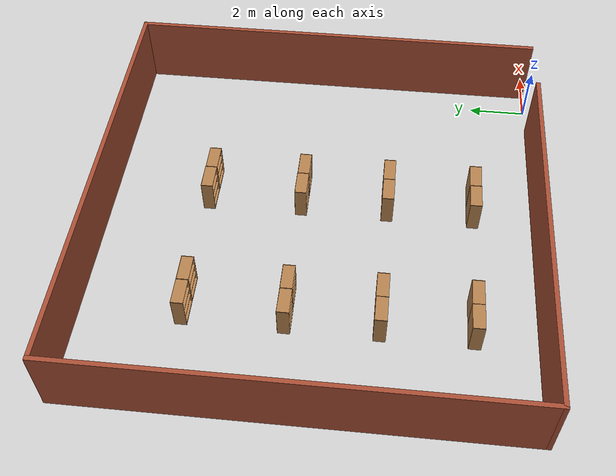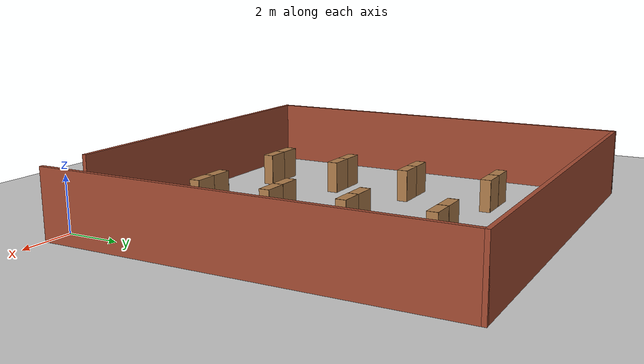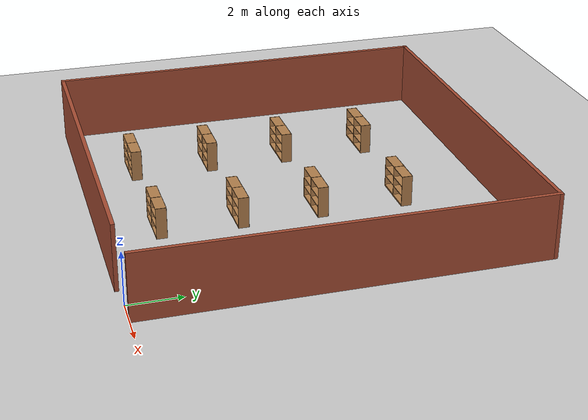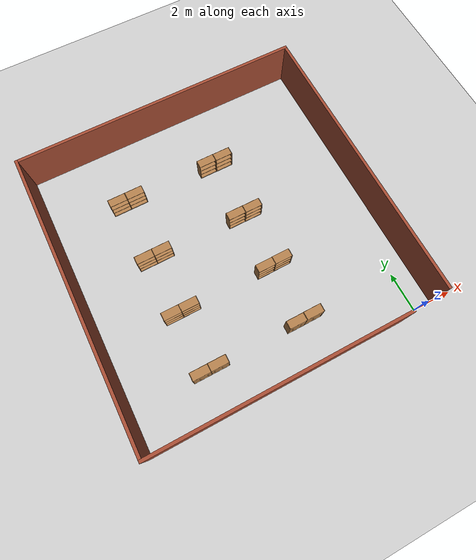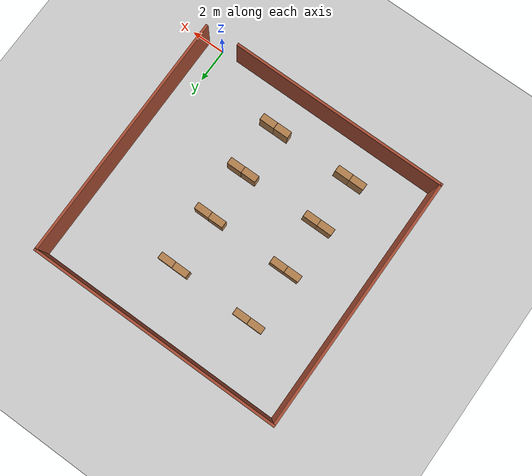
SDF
<sdf version="1.7">
 <world name="default">
  <light name="sun" type="directional">
   <pose>0 0 10 0 -0 0</pose>
   <diffuse>0.8 0.8 0.8 1</diffuse>
   <specular>0.2 0.2 0.2 1</specular>
   <attenuation>
    <range>1000</range>
    <constant>0.9</constant>
    <linear>0.01</linear>
    <quadratic>0.001</quadratic>
   </attenuation>
   <direction>-0.5 0.1 -0.9</direction>
   <spot><inner_angle>0</inner_angle><outer_angle>0</outer_angle><falloff>0</falloff></spot>
  </light>
  <model name="ground_plane">
   <static>1</static>
   <link name="link">
    <collision name="collision">
     <geometry><plane><normal>0 0 1</normal><size>100 100</size></plane></geometry>
     <surface>
      <contact><collide_bitmask>65535</collide_bitmask></contact>
      <friction><ode><mu>100</mu><mu2>50</mu2></ode></friction>
     </surface>
    </collision>
    <visual name="visual">
     <cast_shadows>0</cast_shadows>
     <geometry><plane><normal>0 0 1</normal><size>100 100</size></plane></geometry>
     <material>
      <script><uri>file://media/materials/scripts/gazebo.material</uri><name>Gazebo/Grey</name></script>
     </material>
    </visual>
   </link>
  </model>
  <gravity>0 0 -9.8</gravity>
  <magnetic_field>6e-06 2.3e-05 -4.2e-05</magnetic_field>
  <atmosphere type="adiabatic"/>
  <physics type="ode">
   <max_step_size>0.001</max_step_size>
   <real_time_factor>1</real_time_factor>
   <real_time_update_rate>1000</real_time_update_rate>
  </physics>
  <scene><ambient>0.4 0.4 0.4 1</ambient><background>0.7 0.7 0.7 1</background><shadows>1</shadows></scene>
  <spherical_coordinates>
   <surface_model>EARTH_WGS84</surface_model>
   <latitude_deg>0</latitude_deg>
   <longitude_deg>0</longitude_deg>
   <elevation>0</elevation>
   <heading_deg>0</heading_deg>
  </spherical_coordinates>
  <model name="Walls">
   <pose>-6.45533 7.33207 0 0 -0 0</pose>
   <link name="Wall_0">
    <collision name="Wall_0_Collision">
     <geometry><box><size>14.847 0.15 2.5</size></box></geometry>
     <pose>0 0 1.25 0 -0 0</pose>
    </collision>
    <visual name="Wall_0_Visual">
     <pose>0 0 1.25 0 -0 0</pose>
     <geometry><box><size>14.847 0.15 2.5</size></box></geometry>
     <material>
      <script><uri>file://media/materials/scripts/gazebo.material</uri><name>Gazebo/Bricks</name></script>
      <ambient>1 1 1 1</ambient>
     </material>
     <meta><layer>0</layer></meta>
    </visual>
    <pose>7.425 0.0765 0 0 -0 1.5708</pose>
   </link>
   <link name="Wall_2">
    <collision name="Wall_2_Collision">
     <geometry><box><size>15 0.15 2.5</size></box></geometry>
     <pose>0 0 1.25 0 -0 0</pose>
    </collision>
    <visual name="Wall_2_Visual">
     <pose>0 0 1.25 0 -0 0</pose>
     <geometry><box><size>15 0.15 2.5</size></box></geometry>
     <material>
      <script><uri>file://media/materials/scripts/gazebo.material</uri><name>Gazebo/Bricks</name></script>
      <ambient>1 1 1 1</ambient>
     </material>
     <meta><layer>0</layer></meta>
    </visual>
    <pose>-7.425 0 0 0 -0 1.5708</pose>
   </link>
   <link name="Wall_5">
    <collision name="Wall_5_Collision">
     <geometry><box><size>13 0.15 2.5</size></box></geometry>
     <pose>0 0 1.25 0 -0 0</pose>
    </collision>
    <visual name="Wall_5_Visual">
     <pose>0 0 1.25 0 -0 0</pose>
     <geometry><box><size>13 0.15 2.5</size></box></geometry>
     <material>
      <script><uri>file://media/materials/scripts/gazebo.material</uri><name>Gazebo/Bricks</name></script>
      <ambient>1 1 1 1</ambient>
     </material>
     <meta><layer>0</layer></meta>
    </visual>
    <pose>-1 -7.425 0 0 -0 0</pose>
   </link>
   <link name="Wall_8">
    <collision name="Wall_8_Collision">
     <geometry><box><size>15 0.15 2.5</size></box></geometry>
     <pose>0 0 1.25 0 -0 0</pose>
    </collision>
    <visual name="Wall_8_Visual">
     <pose>0 0 1.25 0 -0 0</pose>
     <geometry><box><size>15 0.15 2.5</size></box></geometry>
     <material>
      <script><uri>file://media/materials/scripts/gazebo.material</uri><name>Gazebo/Bricks</name></script>
      <ambient>1 1 1 1</ambient>
     </material>
     <meta><layer>0</layer></meta>
    </visual>
    <pose>0 7.425 0 0 -0 0</pose>
   </link>
   <static>1</static>
  </model>
  <model name="bookshelf">
   <static>1</static>
   <link name="link">
    <inertial><mass>1</mass></inertial>
    <collision name="back">
     <pose>0 0.005 0.6 0 -0 0</pose>
     <geometry><box><size>0.9 0.01 1.2</size></box></geometry>
    </collision>
    <visual name="visual1">
     <pose>0 0.005 0.6 0 -0 0</pose>
     <geometry><box><size>0.9 0.01 1.2</size></box></geometry>
     <material>
      <script><uri>file://media/materials/scripts/gazebo.material</uri><name>Gazebo/Wood</name></script>
     </material>
    </visual>
    <collision name="left_side">
     <pose>0.45 -0.195 0.6 0 -0 0</pose>
     <geometry><box><size>0.02 0.4 1.2</size></box></geometry>
    </collision>
    <visual name="visual2">
     <pose>0.45 -0.195 0.6 0 -0 0</pose>
     <geometry><box><size>0.02 0.4 1.2</size></box></geometry>
     <material>
      <script><uri>file://media/materials/scripts/gazebo.material</uri><name>Gazebo/Wood</name></script>
     </material>
    </visual>
    <collision name="right_side">
     <pose>-0.45 -0.195 0.6 0 -0 0</pose>
     <geometry><box><size>0.02 0.4 1.2</size></box></geometry>
    </collision>
    <visual name="visual3">
     <pose>-0.45 -0.195 0.6 0 -0 0</pose>
     <geometry><box><size>0.02 0.4 1.2</size></box></geometry>
     <material>
      <script><uri>file://media/materials/scripts/gazebo.material</uri><name>Gazebo/Wood</name></script>
     </material>
    </visual>
    <collision name="bottom">
     <pose>0 -0.195 0.03 0 -0 0</pose>
     <geometry><box><size>0.88 0.4 0.06</size></box></geometry>
    </collision>
    <visual name="visual4">
     <pose>0 -0.195 0.03 0 -0 0</pose>
     <geometry><box><size>0.88 0.4 0.06</size></box></geometry>
     <material>
      <script><uri>file://media/materials/scripts/gazebo.material</uri><name>Gazebo/Wood</name></script>
     </material>
    </visual>
    <collision name="top">
     <pose>0 -0.195 1.19 0 -0 0</pose>
     <geometry><box><size>0.88 0.4 0.02</size></box></geometry>
    </collision>
    <visual name="visual5">
     <pose>0 -0.195 1.19 0 -0 0</pose>
     <geometry><box><size>0.88 0.4 0.02</size></box></geometry>
     <material>
      <script><uri>file://media/materials/scripts/gazebo.material</uri><name>Gazebo/Wood</name></script>
     </material>
    </visual>
    <collision name="low_shelf">
     <pose>0 -0.195 0.43 0 -0 0</pose>
     <geometry><box><size>0.88 0.4 0.02</size></box></geometry>
    </collision>
    <visual name="visual6">
     <pose>0 -0.195 0.43 0 -0 0</pose>
     <geometry><box><size>0.88 0.4 0.02</size></box></geometry>
     <material>
      <script><uri>file://media/materials/scripts/gazebo.material</uri><name>Gazebo/Wood</name></script>
     </material>
    </visual>
    <collision name="high_shelf">
     <pose>0 -0.195 0.8 0 -0 0</pose>
     <geometry><box><size>0.88 0.4 0.02</size></box></geometry>
    </collision>
    <visual name="visual7">
     <pose>0 -0.195 0.8 0 -0 0</pose>
     <geometry><box><size>0.88 0.4 0.02</size></box></geometry>
     <material>
      <script><uri>file://media/materials/scripts/gazebo.material</uri><name>Gazebo/Wood</name></script>
     </material>
    </visual>
   </link>
   <pose>-10.3627 2.18884 0 0 -0 0</pose>
  </model>
  <model name="bookshelf_0">
   <static>1</static>
   <link name="link">
    <inertial><mass>1</mass></inertial>
    <collision name="back">
     <pose>0 0.005 0.6 0 -0 0</pose>
     <geometry><box><size>0.9 0.01 1.2</size></box></geometry>
    </collision>
    <visual name="visual1">
     <pose>0 0.005 0.6 0 -0 0</pose>
     <geometry><box><size>0.9 0.01 1.2</size></box></geometry>
     <material>
      <script><uri>file://media/materials/scripts/gazebo.material</uri><name>Gazebo/Wood</name></script>
     </material>
    </visual>
    <collision name="left_side">
     <pose>0.45 -0.195 0.6 0 -0 0</pose>
     <geometry><box><size>0.02 0.4 1.2</size></box></geometry>
    </collision>
    <visual name="visual2">
     <pose>0.45 -0.195 0.6 0 -0 0</pose>
     <geometry><box><size>0.02 0.4 1.2</size></box></geometry>
     <material>
      <script><uri>file://media/materials/scripts/gazebo.material</uri><name>Gazebo/Wood</name></script>
     </material>
    </visual>
    <collision name="right_side">
     <pose>-0.45 -0.195 0.6 0 -0 0</pose>
     <geometry><box><size>0.02 0.4 1.2</size></box></geometry>
    </collision>
    <visual name="visual3">
     <pose>-0.45 -0.195 0.6 0 -0 0</pose>
     <geometry><box><size>0.02 0.4 1.2</size></box></geometry>
     <material>
      <script><uri>file://media/materials/scripts/gazebo.material</uri><name>Gazebo/Wood</name></script>
     </material>
    </visual>
    <collision name="bottom">
     <pose>0 -0.195 0.03 0 -0 0</pose>
     <geometry><box><size>0.88 0.4 0.06</size></box></geometry>
    </collision>
    <visual name="visual4">
     <pose>0 -0.195 0.03 0 -0 0</pose>
     <geometry><box><size>0.88 0.4 0.06</size></box></geometry>
     <material>
      <script><uri>file://media/materials/scripts/gazebo.material</uri><name>Gazebo/Wood</name></script>
     </material>
    </visual>
    <collision name="top">
     <pose>0 -0.195 1.19 0 -0 0</pose>
     <geometry><box><size>0.88 0.4 0.02</size></box></geometry>
    </collision>
    <visual name="visual5">
     <pose>0 -0.195 1.19 0 -0 0</pose>
     <geometry><box><size>0.88 0.4 0.02</size></box></geometry>
     <material>
      <script><uri>file://media/materials/scripts/gazebo.material</uri><name>Gazebo/Wood</name></script>
     </material>
    </visual>
    <collision name="low_shelf">
     <pose>0 -0.195 0.43 0 -0 0</pose>
     <geometry><box><size>0.88 0.4 0.02</size></box></geometry>
    </collision>
    <visual name="visual6">
     <pose>0 -0.195 0.43 0 -0 0</pose>
     <geometry><box><size>0.88 0.4 0.02</size></box></geometry>
     <material>
      <script><uri>file://media/materials/scripts/gazebo.material</uri><name>Gazebo/Wood</name></script>
     </material>
    </visual>
    <collision name="high_shelf">
     <pose>0 -0.195 0.8 0 -0 0</pose>
     <geometry><box><size>0.88 0.4 0.02</size></box></geometry>
    </collision>
    <visual name="visual7">
     <pose>0 -0.195 0.8 0 -0 0</pose>
     <geometry><box><size>0.88 0.4 0.02</size></box></geometry>
     <material>
      <script><uri>file://media/materials/scripts/gazebo.material</uri><name>Gazebo/Wood</name></script>
     </material>
    </visual>
   </link>
   <pose>-9.46891 2.1904 0 0 -0 0</pose>
  </model>
  <model name="bookshelf_1_clone">
   <static>1</static>
   <link name="link">
    <inertial><mass>1</mass></inertial>
    <collision name="back">
     <pose>0 0.005 0.6 0 -0 0</pose>
     <geometry><box><size>0.9 0.01 1.2</size></box></geometry>
    </collision>
    <visual name="visual1">
     <pose>0 0.005 0.6 0 -0 0</pose>
     <geometry><box><size>0.9 0.01 1.2</size></box></geometry>
     <material>
      <script><uri>file://media/materials/scripts/gazebo.material</uri><name>Gazebo/Wood</name></script>
     </material>
    </visual>
    <collision name="left_side">
     <pose>0.45 -0.195 0.6 0 -0 0</pose>
     <geometry><box><size>0.02 0.4 1.2</size></box></geometry>
    </collision>
    <visual name="visual2">
     <pose>0.45 -0.195 0.6 0 -0 0</pose>
     <geometry><box><size>0.02 0.4 1.2</size></box></geometry>
     <material>
      <script><uri>file://media/materials/scripts/gazebo.material</uri><name>Gazebo/Wood</name></script>
     </material>
    </visual>
    <collision name="right_side">
     <pose>-0.45 -0.195 0.6 0 -0 0</pose>
     <geometry><box><size>0.02 0.4 1.2</size></box></geometry>
    </collision>
    <visual name="visual3">
     <pose>-0.45 -0.195 0.6 0 -0 0</pose>
     <geometry><box><size>0.02 0.4 1.2</size></box></geometry>
     <material>
      <script><uri>file://media/materials/scripts/gazebo.material</uri><name>Gazebo/Wood</name></script>
     </material>
    </visual>
    <collision name="bottom">
     <pose>0 -0.195 0.03 0 -0 0</pose>
     <geometry><box><size>0.88 0.4 0.06</size></box></geometry>
    </collision>
    <visual name="visual4">
     <pose>0 -0.195 0.03 0 -0 0</pose>
     <geometry><box><size>0.88 0.4 0.06</size></box></geometry>
     <material>
      <script><uri>file://media/materials/scripts/gazebo.material</uri><name>Gazebo/Wood</name></script>
     </material>
    </visual>
    <collision name="top">
     <pose>0 -0.195 1.19 0 -0 0</pose>
     <geometry><box><size>0.88 0.4 0.02</size></box></geometry>
    </collision>
    <visual name="visual5">
     <pose>0 -0.195 1.19 0 -0 0</pose>
     <geometry><box><size>0.88 0.4 0.02</size></box></geometry>
     <material>
      <script><uri>file://media/materials/scripts/gazebo.material</uri><name>Gazebo/Wood</name></script>
     </material>
    </visual>
    <collision name="low_shelf">
     <pose>0 -0.195 0.43 0 -0 0</pose>
     <geometry><box><size>0.88 0.4 0.02</size></box></geometry>
    </collision>
    <visual name="visual6">
     <pose>0 -0.195 0.43 0 -0 0</pose>
     <geometry><box><size>0.88 0.4 0.02</size></box></geometry>
     <material>
      <script><uri>file://media/materials/scripts/gazebo.material</uri><name>Gazebo/Wood</name></script>
     </material>
    </visual>
    <collision name="high_shelf">
     <pose>0 -0.195 0.8 0 -0 0</pose>
     <geometry><box><size>0.88 0.4 0.02</size></box></geometry>
    </collision>
    <visual name="visual7">
     <pose>0 -0.195 0.8 0 -0 0</pose>
     <geometry><box><size>0.88 0.4 0.02</size></box></geometry>
     <material>
      <script><uri>file://media/materials/scripts/gazebo.material</uri><name>Gazebo/Wood</name></script>
     </material>
    </visual>
   </link>
   <pose>-9.48296 5.17271 0 0 -0 0</pose>
  </model>
  <model name="bookshelf_2">
   <static>1</static>
   <link name="link">
    <inertial><mass>1</mass></inertial>
    <collision name="back">
     <pose>0 0.005 0.6 0 -0 0</pose>
     <geometry><box><size>0.9 0.01 1.2</size></box></geometry>
    </collision>
    <visual name="visual1">
     <pose>0 0.005 0.6 0 -0 0</pose>
     <geometry><box><size>0.9 0.01 1.2</size></box></geometry>
     <material>
      <script><uri>file://media/materials/scripts/gazebo.material</uri><name>Gazebo/Wood</name></script>
     </material>
    </visual>
    <collision name="left_side">
     <pose>0.45 -0.195 0.6 0 -0 0</pose>
     <geometry><box><size>0.02 0.4 1.2</size></box></geometry>
    </collision>
    <visual name="visual2">
     <pose>0.45 -0.195 0.6 0 -0 0</pose>
     <geometry><box><size>0.02 0.4 1.2</size></box></geometry>
     <material>
      <script><uri>file://media/materials/scripts/gazebo.material</uri><name>Gazebo/Wood</name></script>
     </material>
    </visual>
    <collision name="right_side">
     <pose>-0.45 -0.195 0.6 0 -0 0</pose>
     <geometry><box><size>0.02 0.4 1.2</size></box></geometry>
    </collision>
    <visual name="visual3">
     <pose>-0.45 -0.195 0.6 0 -0 0</pose>
     <geometry><box><size>0.02 0.4 1.2</size></box></geometry>
     <material>
      <script><uri>file://media/materials/scripts/gazebo.material</uri><name>Gazebo/Wood</name></script>
     </material>
    </visual>
    <collision name="bottom">
     <pose>0 -0.195 0.03 0 -0 0</pose>
     <geometry><box><size>0.88 0.4 0.06</size></box></geometry>
    </collision>
    <visual name="visual4">
     <pose>0 -0.195 0.03 0 -0 0</pose>
     <geometry><box><size>0.88 0.4 0.06</size></box></geometry>
     <material>
      <script><uri>file://media/materials/scripts/gazebo.material</uri><name>Gazebo/Wood</name></script>
     </material>
    </visual>
    <collision name="top">
     <pose>0 -0.195 1.19 0 -0 0</pose>
     <geometry><box><size>0.88 0.4 0.02</size></box></geometry>
    </collision>
    <visual name="visual5">
     <pose>0 -0.195 1.19 0 -0 0</pose>
     <geometry><box><size>0.88 0.4 0.02</size></box></geometry>
     <material>
      <script><uri>file://media/materials/scripts/gazebo.material</uri><name>Gazebo/Wood</name></script>
     </material>
    </visual>
    <collision name="low_shelf">
     <pose>0 -0.195 0.43 0 -0 0</pose>
     <geometry><box><size>0.88 0.4 0.02</size></box></geometry>
    </collision>
    <visual name="visual6">
     <pose>0 -0.195 0.43 0 -0 0</pose>
     <geometry><box><size>0.88 0.4 0.02</size></box></geometry>
     <material>
      <script><uri>file://media/materials/scripts/gazebo.material</uri><name>Gazebo/Wood</name></script>
     </material>
    </visual>
    <collision name="high_shelf">
     <pose>0 -0.195 0.8 0 -0 0</pose>
     <geometry><box><size>0.88 0.4 0.02</size></box></geometry>
    </collision>
    <visual name="visual7">
     <pose>0 -0.195 0.8 0 -0 0</pose>
     <geometry><box><size>0.88 0.4 0.02</size></box></geometry>
     <material>
      <script><uri>file://media/materials/scripts/gazebo.material</uri><name>Gazebo/Wood</name></script>
     </material>
    </visual>
   </link>
   <pose>-10.3798 8.1937 0 0 -0 0</pose>
  </model>
  <model name="bookshelf_2_clone">
   <static>1</static>
   <link name="link">
    <inertial><mass>1</mass></inertial>
    <collision name="back">
     <pose>0 0.005 0.6 0 -0 0</pose>
     <geometry><box><size>0.9 0.01 1.2</size></box></geometry>
    </collision>
    <visual name="visual1">
     <pose>0 0.005 0.6 0 -0 0</pose>
     <geometry><box><size>0.9 0.01 1.2</size></box></geometry>
     <material>
      <script><uri>file://media/materials/scripts/gazebo.material</uri><name>Gazebo/Wood</name></script>
     </material>
    </visual>
    <collision name="left_side">
     <pose>0.45 -0.195 0.6 0 -0 0</pose>
     <geometry><box><size>0.02 0.4 1.2</size></box></geometry>
    </collision>
    <visual name="visual2">
     <pose>0.45 -0.195 0.6 0 -0 0</pose>
     <geometry><box><size>0.02 0.4 1.2</size></box></geometry>
     <material>
      <script><uri>file://media/materials/scripts/gazebo.material</uri><name>Gazebo/Wood</name></script>
     </material>
    </visual>
    <collision name="right_side">
     <pose>-0.45 -0.195 0.6 0 -0 0</pose>
     <geometry><box><size>0.02 0.4 1.2</size></box></geometry>
    </collision>
    <visual name="visual3">
     <pose>-0.45 -0.195 0.6 0 -0 0</pose>
     <geometry><box><size>0.02 0.4 1.2</size></box></geometry>
     <material>
      <script><uri>file://media/materials/scripts/gazebo.material</uri><name>Gazebo/Wood</name></script>
     </material>
    </visual>
    <collision name="bottom">
     <pose>0 -0.195 0.03 0 -0 0</pose>
     <geometry><box><size>0.88 0.4 0.06</size></box></geometry>
    </collision>
    <visual name="visual4">
     <pose>0 -0.195 0.03 0 -0 0</pose>
     <geometry><box><size>0.88 0.4 0.06</size></box></geometry>
     <material>
      <script><uri>file://media/materials/scripts/gazebo.material</uri><name>Gazebo/Wood</name></script>
     </material>
    </visual>
    <collision name="top">
     <pose>0 -0.195 1.19 0 -0 0</pose>
     <geometry><box><size>0.88 0.4 0.02</size></box></geometry>
    </collision>
    <visual name="visual5">
     <pose>0 -0.195 1.19 0 -0 0</pose>
     <geometry><box><size>0.88 0.4 0.02</size></box></geometry>
     <material>
      <script><uri>file://media/materials/scripts/gazebo.material</uri><name>Gazebo/Wood</name></script>
     </material>
    </visual>
    <collision name="low_shelf">
     <pose>0 -0.195 0.43 0 -0 0</pose>
     <geometry><box><size>0.88 0.4 0.02</size></box></geometry>
    </collision>
    <visual name="visual6">
     <pose>0 -0.195 0.43 0 -0 0</pose>
     <geometry><box><size>0.88 0.4 0.02</size></box></geometry>
     <material>
      <script><uri>file://media/materials/scripts/gazebo.material</uri><name>Gazebo/Wood</name></script>
     </material>
    </visual>
    <collision name="high_shelf">
     <pose>0 -0.195 0.8 0 -0 0</pose>
     <geometry><box><size>0.88 0.4 0.02</size></box></geometry>
    </collision>
    <visual name="visual7">
     <pose>0 -0.195 0.8 0 -0 0</pose>
     <geometry><box><size>0.88 0.4 0.02</size></box></geometry>
     <material>
      <script><uri>file://media/materials/scripts/gazebo.material</uri><name>Gazebo/Wood</name></script>
     </material>
    </visual>
   </link>
   <pose>-9.47282 8.19691 0 0 -0 0</pose>
  </model>
  <model name="bookshelf_1_clone_clone">
   <static>1</static>
   <link name="link">
    <inertial><mass>1</mass></inertial>
    <collision name="back">
     <pose>0 0.005 0.6 0 -0 0</pose>
     <geometry><box><size>0.9 0.01 1.2</size></box></geometry>
    </collision>
    <visual name="visual1">
     <pose>0 0.005 0.6 0 -0 0</pose>
     <geometry><box><size>0.9 0.01 1.2</size></box></geometry>
     <material>
      <script><uri>file://media/materials/scripts/gazebo.material</uri><name>Gazebo/Wood</name></script>
     </material>
    </visual>
    <collision name="left_side">
     <pose>0.45 -0.195 0.6 0 -0 0</pose>
     <geometry><box><size>0.02 0.4 1.2</size></box></geometry>
    </collision>
    <visual name="visual2">
     <pose>0.45 -0.195 0.6 0 -0 0</pose>
     <geometry><box><size>0.02 0.4 1.2</size></box></geometry>
     <material>
      <script><uri>file://media/materials/scripts/gazebo.material</uri><name>Gazebo/Wood</name></script>
     </material>
    </visual>
    <collision name="right_side">
     <pose>-0.45 -0.195 0.6 0 -0 0</pose>
     <geometry><box><size>0.02 0.4 1.2</size></box></geometry>
    </collision>
    <visual name="visual3">
     <pose>-0.45 -0.195 0.6 0 -0 0</pose>
     <geometry><box><size>0.02 0.4 1.2</size></box></geometry>
     <material>
      <script><uri>file://media/materials/scripts/gazebo.material</uri><name>Gazebo/Wood</name></script>
     </material>
    </visual>
    <collision name="bottom">
     <pose>0 -0.195 0.03 0 -0 0</pose>
     <geometry><box><size>0.88 0.4 0.06</size></box></geometry>
    </collision>
    <visual name="visual4">
     <pose>0 -0.195 0.03 0 -0 0</pose>
     <geometry><box><size>0.88 0.4 0.06</size></box></geometry>
     <material>
      <script><uri>file://media/materials/scripts/gazebo.material</uri><name>Gazebo/Wood</name></script>
     </material>
    </visual>
    <collision name="top">
     <pose>0 -0.195 1.19 0 -0 0</pose>
     <geometry><box><size>0.88 0.4 0.02</size></box></geometry>
    </collision>
    <visual name="visual5">
     <pose>0 -0.195 1.19 0 -0 0</pose>
     <geometry><box><size>0.88 0.4 0.02</size></box></geometry>
     <material>
      <script><uri>file://media/materials/scripts/gazebo.material</uri><name>Gazebo/Wood</name></script>
     </material>
    </visual>
    <collision name="low_shelf">
     <pose>0 -0.195 0.43 0 -0 0</pose>
     <geometry><box><size>0.88 0.4 0.02</size></box></geometry>
    </collision>
    <visual name="visual6">
     <pose>0 -0.195 0.43 0 -0 0</pose>
     <geometry><box><size>0.88 0.4 0.02</size></box></geometry>
     <material>
      <script><uri>file://media/materials/scripts/gazebo.material</uri><name>Gazebo/Wood</name></script>
     </material>
    </visual>
    <collision name="high_shelf">
     <pose>0 -0.195 0.8 0 -0 0</pose>
     <geometry><box><size>0.88 0.4 0.02</size></box></geometry>
    </collision>
    <visual name="visual7">
     <pose>0 -0.195 0.8 0 -0 0</pose>
     <geometry><box><size>0.88 0.4 0.02</size></box></geometry>
     <material>
      <script><uri>file://media/materials/scripts/gazebo.material</uri><name>Gazebo/Wood</name></script>
     </material>
    </visual>
   </link>
   <pose>-10.3708 5.17206 0 0 -0 0</pose>
  </model>
  <model name="bookshelf_2_clone_clone">
   <static>1</static>
   <link name="link">
    <inertial><mass>1</mass></inertial>
    <collision name="back">
     <pose>0 0.005 0.6 0 -0 0</pose>
     <geometry><box><size>0.9 0.01 1.2</size></box></geometry>
    </collision>
    <visual name="visual1">
     <pose>0 0.005 0.6 0 -0 0</pose>
     <geometry><box><size>0.9 0.01 1.2</size></box></geometry>
     <material>
      <script><uri>file://media/materials/scripts/gazebo.material</uri><name>Gazebo/Wood</name></script>
     </material>
    </visual>
    <collision name="left_side">
     <pose>0.45 -0.195 0.6 0 -0 0</pose>
     <geometry><box><size>0.02 0.4 1.2</size></box></geometry>
    </collision>
    <visual name="visual2">
     <pose>0.45 -0.195 0.6 0 -0 0</pose>
     <geometry><box><size>0.02 0.4 1.2</size></box></geometry>
     <material>
      <script><uri>file://media/materials/scripts/gazebo.material</uri><name>Gazebo/Wood</name></script>
     </material>
    </visual>
    <collision name="right_side">
     <pose>-0.45 -0.195 0.6 0 -0 0</pose>
     <geometry><box><size>0.02 0.4 1.2</size></box></geometry>
    </collision>
    <visual name="visual3">
     <pose>-0.45 -0.195 0.6 0 -0 0</pose>
     <geometry><box><size>0.02 0.4 1.2</size></box></geometry>
     <material>
      <script><uri>file://media/materials/scripts/gazebo.material</uri><name>Gazebo/Wood</name></script>
     </material>
    </visual>
    <collision name="bottom">
     <pose>0 -0.195 0.03 0 -0 0</pose>
     <geometry><box><size>0.88 0.4 0.06</size></box></geometry>
    </collision>
    <visual name="visual4">
     <pose>0 -0.195 0.03 0 -0 0</pose>
     <geometry><box><size>0.88 0.4 0.06</size></box></geometry>
     <material>
      <script><uri>file://media/materials/scripts/gazebo.material</uri><name>Gazebo/Wood</name></script>
     </material>
    </visual>
    <collision name="top">
     <pose>0 -0.195 1.19 0 -0 0</pose>
     <geometry><box><size>0.88 0.4 0.02</size></box></geometry>
    </collision>
    <visual name="visual5">
     <pose>0 -0.195 1.19 0 -0 0</pose>
     <geometry><box><size>0.88 0.4 0.02</size></box></geometry>
     <material>
      <script><uri>file://media/materials/scripts/gazebo.material</uri><name>Gazebo/Wood</name></script>
     </material>
    </visual>
    <collision name="low_shelf">
     <pose>0 -0.195 0.43 0 -0 0</pose>
     <geometry><box><size>0.88 0.4 0.02</size></box></geometry>
    </collision>
    <visual name="visual6">
     <pose>0 -0.195 0.43 0 -0 0</pose>
     <geometry><box><size>0.88 0.4 0.02</size></box></geometry>
     <material>
      <script><uri>file://media/materials/scripts/gazebo.material</uri><name>Gazebo/Wood</name></script>
     </material>
    </visual>
    <collision name="high_shelf">
     <pose>0 -0.195 0.8 0 -0 0</pose>
     <geometry><box><size>0.88 0.4 0.02</size></box></geometry>
    </collision>
    <visual name="visual7">
     <pose>0 -0.195 0.8 0 -0 0</pose>
     <geometry><box><size>0.88 0.4 0.02</size></box></geometry>
     <material>
      <script><uri>file://media/materials/scripts/gazebo.material</uri><name>Gazebo/Wood</name></script>
     </material>
    </visual>
   </link>
   <pose>-9.45575 11.4978 0 0 -0 0</pose>
  </model>
  <model name="bookshelf_2_clone_clone_0">
   <static>1</static>
   <link name="link">
    <inertial><mass>1</mass></inertial>
    <collision name="back">
     <pose>0 0.005 0.6 0 -0 0</pose>
     <geometry><box><size>0.9 0.01 1.2</size></box></geometry>
    </collision>
    <visual name="visual1">
     <pose>0 0.005 0.6 0 -0 0</pose>
     <geometry><box><size>0.9 0.01 1.2</size></box></geometry>
     <material>
      <script><uri>file://media/materials/scripts/gazebo.material</uri><name>Gazebo/Wood</name></script>
     </material>
    </visual>
    <collision name="left_side">
     <pose>0.45 -0.195 0.6 0 -0 0</pose>
     <geometry><box><size>0.02 0.4 1.2</size></box></geometry>
    </collision>
    <visual name="visual2">
     <pose>0.45 -0.195 0.6 0 -0 0</pose>
     <geometry><box><size>0.02 0.4 1.2</size></box></geometry>
     <material>
      <script><uri>file://media/materials/scripts/gazebo.material</uri><name>Gazebo/Wood</name></script>
     </material>
    </visual>
    <collision name="right_side">
     <pose>-0.45 -0.195 0.6 0 -0 0</pose>
     <geometry><box><size>0.02 0.4 1.2</size></box></geometry>
    </collision>
    <visual name="visual3">
     <pose>-0.45 -0.195 0.6 0 -0 0</pose>
     <geometry><box><size>0.02 0.4 1.2</size></box></geometry>
     <material>
      <script><uri>file://media/materials/scripts/gazebo.material</uri><name>Gazebo/Wood</name></script>
     </material>
    </visual>
    <collision name="bottom">
     <pose>0 -0.195 0.03 0 -0 0</pose>
     <geometry><box><size>0.88 0.4 0.06</size></box></geometry>
    </collision>
    <visual name="visual4">
     <pose>0 -0.195 0.03 0 -0 0</pose>
     <geometry><box><size>0.88 0.4 0.06</size></box></geometry>
     <material>
      <script><uri>file://media/materials/scripts/gazebo.material</uri><name>Gazebo/Wood</name></script>
     </material>
    </visual>
    <collision name="top">
     <pose>0 -0.195 1.19 0 -0 0</pose>
     <geometry><box><size>0.88 0.4 0.02</size></box></geometry>
    </collision>
    <visual name="visual5">
     <pose>0 -0.195 1.19 0 -0 0</pose>
     <geometry><box><size>0.88 0.4 0.02</size></box></geometry>
     <material>
      <script><uri>file://media/materials/scripts/gazebo.material</uri><name>Gazebo/Wood</name></script>
     </material>
    </visual>
    <collision name="low_shelf">
     <pose>0 -0.195 0.43 0 -0 0</pose>
     <geometry><box><size>0.88 0.4 0.02</size></box></geometry>
    </collision>
    <visual name="visual6">
     <pose>0 -0.195 0.43 0 -0 0</pose>
     <geometry><box><size>0.88 0.4 0.02</size></box></geometry>
     <material>
      <script><uri>file://media/materials/scripts/gazebo.material</uri><name>Gazebo/Wood</name></script>
     </material>
    </visual>
    <collision name="high_shelf">
     <pose>0 -0.195 0.8 0 -0 0</pose>
     <geometry><box><size>0.88 0.4 0.02</size></box></geometry>
    </collision>
    <visual name="visual7">
     <pose>0 -0.195 0.8 0 -0 0</pose>
     <geometry><box><size>0.88 0.4 0.02</size></box></geometry>
     <material>
      <script><uri>file://media/materials/scripts/gazebo.material</uri><name>Gazebo/Wood</name></script>
     </material>
    </visual>
   </link>
   <pose>-10.3657 11.4987 0 0 -0 0</pose>
  </model>
  <model name="bookshelf_0_clone">
   <static>1</static>
   <link name="link">
    <inertial><mass>1</mass></inertial>
    <collision name="back">
     <pose>0 0.005 0.6 0 -0 0</pose>
     <geometry><box><size>0.9 0.01 1.2</size></box></geometry>
    </collision>
    <visual name="visual1">
     <pose>0 0.005 0.6 0 -0 0</pose>
     <geometry><box><size>0.9 0.01 1.2</size></box></geometry>
     <material>
      <script><uri>file://media/materials/scripts/gazebo.material</uri><name>Gazebo/Wood</name></script>
     </material>
    </visual>
    <collision name="left_side">
     <pose>0.45 -0.195 0.6 0 -0 0</pose>
     <geometry><box><size>0.02 0.4 1.2</size></box></geometry>
    </collision>
    <visual name="visual2">
     <pose>0.45 -0.195 0.6 0 -0 0</pose>
     <geometry><box><size>0.02 0.4 1.2</size></box></geometry>
     <material>
      <script><uri>file://media/materials/scripts/gazebo.material</uri><name>Gazebo/Wood</name></script>
     </material>
    </visual>
    <collision name="right_side">
     <pose>-0.45 -0.195 0.6 0 -0 0</pose>
     <geometry><box><size>0.02 0.4 1.2</size></box></geometry>
    </collision>
    <visual name="visual3">
     <pose>-0.45 -0.195 0.6 0 -0 0</pose>
     <geometry><box><size>0.02 0.4 1.2</size></box></geometry>
     <material>
      <script><uri>file://media/materials/scripts/gazebo.material</uri><name>Gazebo/Wood</name></script>
     </material>
    </visual>
    <collision name="bottom">
     <pose>0 -0.195 0.03 0 -0 0</pose>
     <geometry><box><size>0.88 0.4 0.06</size></box></geometry>
    </collision>
    <visual name="visual4">
     <pose>0 -0.195 0.03 0 -0 0</pose>
     <geometry><box><size>0.88 0.4 0.06</size></box></geometry>
     <material>
      <script><uri>file://media/materials/scripts/gazebo.material</uri><name>Gazebo/Wood</name></script>
     </material>
    </visual>
    <collision name="top">
     <pose>0 -0.195 1.19 0 -0 0</pose>
     <geometry><box><size>0.88 0.4 0.02</size></box></geometry>
    </collision>
    <visual name="visual5">
     <pose>0 -0.195 1.19 0 -0 0</pose>
     <geometry><box><size>0.88 0.4 0.02</size></box></geometry>
     <material>
      <script><uri>file://media/materials/scripts/gazebo.material</uri><name>Gazebo/Wood</name></script>
     </material>
    </visual>
    <collision name="low_shelf">
     <pose>0 -0.195 0.43 0 -0 0</pose>
     <geometry><box><size>0.88 0.4 0.02</size></box></geometry>
    </collision>
    <visual name="visual6">
     <pose>0 -0.195 0.43 0 -0 0</pose>
     <geometry><box><size>0.88 0.4 0.02</size></box></geometry>
     <material>
      <script><uri>file://media/materials/scripts/gazebo.material</uri><name>Gazebo/Wood</name></script>
     </material>
    </visual>
    <collision name="high_shelf">
     <pose>0 -0.195 0.8 0 -0 0</pose>
     <geometry><box><size>0.88 0.4 0.02</size></box></geometry>
    </collision>
    <visual name="visual7">
     <pose>0 -0.195 0.8 0 -0 0</pose>
     <geometry><box><size>0.88 0.4 0.02</size></box></geometry>
     <material>
      <script><uri>file://media/materials/scripts/gazebo.material</uri><name>Gazebo/Wood</name></script>
     </material>
    </visual>
   </link>
   <pose>-5.47266 2.21127 0 0 -0 0</pose>
  </model>
  <model name="bookshelf_0_clone_clone">
   <static>1</static>
   <link name="link">
    <inertial><mass>1</mass></inertial>
    <collision name="back">
     <pose>0 0.005 0.6 0 -0 0</pose>
     <geometry><box><size>0.9 0.01 1.2</size></box></geometry>
    </collision>
    <visual name="visual1">
     <pose>0 0.005 0.6 0 -0 0</pose>
     <geometry><box><size>0.9 0.01 1.2</size></box></geometry>
     <material>
      <script><uri>file://media/materials/scripts/gazebo.material</uri><name>Gazebo/Wood</name></script>
     </material>
    </visual>
    <collision name="left_side">
     <pose>0.45 -0.195 0.6 0 -0 0</pose>
     <geometry><box><size>0.02 0.4 1.2</size></box></geometry>
    </collision>
    <visual name="visual2">
     <pose>0.45 -0.195 0.6 0 -0 0</pose>
     <geometry><box><size>0.02 0.4 1.2</size></box></geometry>
     <material>
      <script><uri>file://media/materials/scripts/gazebo.material</uri><name>Gazebo/Wood</name></script>
     </material>
    </visual>
    <collision name="right_side">
     <pose>-0.45 -0.195 0.6 0 -0 0</pose>
     <geometry><box><size>0.02 0.4 1.2</size></box></geometry>
    </collision>
    <visual name="visual3">
     <pose>-0.45 -0.195 0.6 0 -0 0</pose>
     <geometry><box><size>0.02 0.4 1.2</size></box></geometry>
     <material>
      <script><uri>file://media/materials/scripts/gazebo.material</uri><name>Gazebo/Wood</name></script>
     </material>
    </visual>
    <collision name="bottom">
     <pose>0 -0.195 0.03 0 -0 0</pose>
     <geometry><box><size>0.88 0.4 0.06</size></box></geometry>
    </collision>
    <visual name="visual4">
     <pose>0 -0.195 0.03 0 -0 0</pose>
     <geometry><box><size>0.88 0.4 0.06</size></box></geometry>
     <material>
      <script><uri>file://media/materials/scripts/gazebo.material</uri><name>Gazebo/Wood</name></script>
     </material>
    </visual>
    <collision name="top">
     <pose>0 -0.195 1.19 0 -0 0</pose>
     <geometry><box><size>0.88 0.4 0.02</size></box></geometry>
    </collision>
    <visual name="visual5">
     <pose>0 -0.195 1.19 0 -0 0</pose>
     <geometry><box><size>0.88 0.4 0.02</size></box></geometry>
     <material>
      <script><uri>file://media/materials/scripts/gazebo.material</uri><name>Gazebo/Wood</name></script>
     </material>
    </visual>
    <collision name="low_shelf">
     <pose>0 -0.195 0.43 0 -0 0</pose>
     <geometry><box><size>0.88 0.4 0.02</size></box></geometry>
    </collision>
    <visual name="visual6">
     <pose>0 -0.195 0.43 0 -0 0</pose>
     <geometry><box><size>0.88 0.4 0.02</size></box></geometry>
     <material>
      <script><uri>file://media/materials/scripts/gazebo.material</uri><name>Gazebo/Wood</name></script>
     </material>
    </visual>
    <collision name="high_shelf">
     <pose>0 -0.195 0.8 0 -0 0</pose>
     <geometry><box><size>0.88 0.4 0.02</size></box></geometry>
    </collision>
    <visual name="visual7">
     <pose>0 -0.195 0.8 0 -0 0</pose>
     <geometry><box><size>0.88 0.4 0.02</size></box></geometry>
     <material>
      <script><uri>file://media/materials/scripts/gazebo.material</uri><name>Gazebo/Wood</name></script>
     </material>
    </visual>
   </link>
   <pose>-4.56555 2.21562 0 0 -0 0</pose>
  </model>
  <model name="bookshelf_1_clone_clone_0">
   <static>1</static>
   <link name="link">
    <inertial><mass>1</mass></inertial>
    <collision name="back">
     <pose>0 0.005 0.6 0 -0 0</pose>
     <geometry><box><size>0.9 0.01 1.2</size></box></geometry>
    </collision>
    <visual name="visual1">
     <pose>0 0.005 0.6 0 -0 0</pose>
     <geometry><box><size>0.9 0.01 1.2</size></box></geometry>
     <material>
      <script><uri>file://media/materials/scripts/gazebo.material</uri><name>Gazebo/Wood</name></script>
     </material>
    </visual>
    <collision name="left_side">
     <pose>0.45 -0.195 0.6 0 -0 0</pose>
     <geometry><box><size>0.02 0.4 1.2</size></box></geometry>
    </collision>
    <visual name="visual2">
     <pose>0.45 -0.195 0.6 0 -0 0</pose>
     <geometry><box><size>0.02 0.4 1.2</size></box></geometry>
     <material>
      <script><uri>file://media/materials/scripts/gazebo.material</uri><name>Gazebo/Wood</name></script>
     </material>
    </visual>
    <collision name="right_side">
     <pose>-0.45 -0.195 0.6 0 -0 0</pose>
     <geometry><box><size>0.02 0.4 1.2</size></box></geometry>
    </collision>
    <visual name="visual3">
     <pose>-0.45 -0.195 0.6 0 -0 0</pose>
     <geometry><box><size>0.02 0.4 1.2</size></box></geometry>
     <material>
      <script><uri>file://media/materials/scripts/gazebo.material</uri><name>Gazebo/Wood</name></script>
     </material>
    </visual>
    <collision name="bottom">
     <pose>0 -0.195 0.03 0 -0 0</pose>
     <geometry><box><size>0.88 0.4 0.06</size></box></geometry>
    </collision>
    <visual name="visual4">
     <pose>0 -0.195 0.03 0 -0 0</pose>
     <geometry><box><size>0.88 0.4 0.06</size></box></geometry>
     <material>
      <script><uri>file://media/materials/scripts/gazebo.material</uri><name>Gazebo/Wood</name></script>
     </material>
    </visual>
    <collision name="top">
     <pose>0 -0.195 1.19 0 -0 0</pose>
     <geometry><box><size>0.88 0.4 0.02</size></box></geometry>
    </collision>
    <visual name="visual5">
     <pose>0 -0.195 1.19 0 -0 0</pose>
     <geometry><box><size>0.88 0.4 0.02</size></box></geometry>
     <material>
      <script><uri>file://media/materials/scripts/gazebo.material</uri><name>Gazebo/Wood</name></script>
     </material>
    </visual>
    <collision name="low_shelf">
     <pose>0 -0.195 0.43 0 -0 0</pose>
     <geometry><box><size>0.88 0.4 0.02</size></box></geometry>
    </collision>
    <visual name="visual6">
     <pose>0 -0.195 0.43 0 -0 0</pose>
     <geometry><box><size>0.88 0.4 0.02</size></box></geometry>
     <material>
      <script><uri>file://media/materials/scripts/gazebo.material</uri><name>Gazebo/Wood</name></script>
     </material>
    </visual>
    <collision name="high_shelf">
     <pose>0 -0.195 0.8 0 -0 0</pose>
     <geometry><box><size>0.88 0.4 0.02</size></box></geometry>
    </collision>
    <visual name="visual7">
     <pose>0 -0.195 0.8 0 -0 0</pose>
     <geometry><box><size>0.88 0.4 0.02</size></box></geometry>
     <material>
      <script><uri>file://media/materials/scripts/gazebo.material</uri><name>Gazebo/Wood</name></script>
     </material>
    </visual>
   </link>
   <pose>-5.45849 5.19351 0 0 -0 0</pose>
  </model>
  <model name="bookshelf_1_clone_clone_0_clone">
   <static>1</static>
   <link name="link">
    <inertial><mass>1</mass></inertial>
    <collision name="back">
     <pose>0 0.005 0.6 0 -0 0</pose>
     <geometry><box><size>0.9 0.01 1.2</size></box></geometry>
    </collision>
    <visual name="visual1">
     <pose>0 0.005 0.6 0 -0 0</pose>
     <geometry><box><size>0.9 0.01 1.2</size></box></geometry>
     <material>
      <script><uri>file://media/materials/scripts/gazebo.material</uri><name>Gazebo/Wood</name></script>
     </material>
    </visual>
    <collision name="left_side">
     <pose>0.45 -0.195 0.6 0 -0 0</pose>
     <geometry><box><size>0.02 0.4 1.2</size></box></geometry>
    </collision>
    <visual name="visual2">
     <pose>0.45 -0.195 0.6 0 -0 0</pose>
     <geometry><box><size>0.02 0.4 1.2</size></box></geometry>
     <material>
      <script><uri>file://media/materials/scripts/gazebo.material</uri><name>Gazebo/Wood</name></script>
     </material>
    </visual>
    <collision name="right_side">
     <pose>-0.45 -0.195 0.6 0 -0 0</pose>
     <geometry><box><size>0.02 0.4 1.2</size></box></geometry>
    </collision>
    <visual name="visual3">
     <pose>-0.45 -0.195 0.6 0 -0 0</pose>
     <geometry><box><size>0.02 0.4 1.2</size></box></geometry>
     <material>
      <script><uri>file://media/materials/scripts/gazebo.material</uri><name>Gazebo/Wood</name></script>
     </material>
    </visual>
    <collision name="bottom">
     <pose>0 -0.195 0.03 0 -0 0</pose>
     <geometry><box><size>0.88 0.4 0.06</size></box></geometry>
    </collision>
    <visual name="visual4">
     <pose>0 -0.195 0.03 0 -0 0</pose>
     <geometry><box><size>0.88 0.4 0.06</size></box></geometry>
     <material>
      <script><uri>file://media/materials/scripts/gazebo.material</uri><name>Gazebo/Wood</name></script>
     </material>
    </visual>
    <collision name="top">
     <pose>0 -0.195 1.19 0 -0 0</pose>
     <geometry><box><size>0.88 0.4 0.02</size></box></geometry>
    </collision>
    <visual name="visual5">
     <pose>0 -0.195 1.19 0 -0 0</pose>
     <geometry><box><size>0.88 0.4 0.02</size></box></geometry>
     <material>
      <script><uri>file://media/materials/scripts/gazebo.material</uri><name>Gazebo/Wood</name></script>
     </material>
    </visual>
    <collision name="low_shelf">
     <pose>0 -0.195 0.43 0 -0 0</pose>
     <geometry><box><size>0.88 0.4 0.02</size></box></geometry>
    </collision>
    <visual name="visual6">
     <pose>0 -0.195 0.43 0 -0 0</pose>
     <geometry><box><size>0.88 0.4 0.02</size></box></geometry>
     <material>
      <script><uri>file://media/materials/scripts/gazebo.material</uri><name>Gazebo/Wood</name></script>
     </material>
    </visual>
    <collision name="high_shelf">
     <pose>0 -0.195 0.8 0 -0 0</pose>
     <geometry><box><size>0.88 0.4 0.02</size></box></geometry>
    </collision>
    <visual name="visual7">
     <pose>0 -0.195 0.8 0 -0 0</pose>
     <geometry><box><size>0.88 0.4 0.02</size></box></geometry>
     <material>
      <script><uri>file://media/materials/scripts/gazebo.material</uri><name>Gazebo/Wood</name></script>
     </material>
    </visual>
   </link>
   <pose>-4.55929 5.20222 0 0 -0 0</pose>
  </model>
  <model name="bookshelf_2_clone_clone_1">
   <static>1</static>
   <link name="link">
    <inertial><mass>1</mass></inertial>
    <collision name="back">
     <pose>0 0.005 0.6 0 -0 0</pose>
     <geometry><box><size>0.9 0.01 1.2</size></box></geometry>
    </collision>
    <visual name="visual1">
     <pose>0 0.005 0.6 0 -0 0</pose>
     <geometry><box><size>0.9 0.01 1.2</size></box></geometry>
     <material>
      <script><uri>file://media/materials/scripts/gazebo.material</uri><name>Gazebo/Wood</name></script>
     </material>
    </visual>
    <collision name="left_side">
     <pose>0.45 -0.195 0.6 0 -0 0</pose>
     <geometry><box><size>0.02 0.4 1.2</size></box></geometry>
    </collision>
    <visual name="visual2">
     <pose>0.45 -0.195 0.6 0 -0 0</pose>
     <geometry><box><size>0.02 0.4 1.2</size></box></geometry>
     <material>
      <script><uri>file://media/materials/scripts/gazebo.material</uri><name>Gazebo/Wood</name></script>
     </material>
    </visual>
    <collision name="right_side">
     <pose>-0.45 -0.195 0.6 0 -0 0</pose>
     <geometry><box><size>0.02 0.4 1.2</size></box></geometry>
    </collision>
    <visual name="visual3">
     <pose>-0.45 -0.195 0.6 0 -0 0</pose>
     <geometry><box><size>0.02 0.4 1.2</size></box></geometry>
     <material>
      <script><uri>file://media/materials/scripts/gazebo.material</uri><name>Gazebo/Wood</name></script>
     </material>
    </visual>
    <collision name="bottom">
     <pose>0 -0.195 0.03 0 -0 0</pose>
     <geometry><box><size>0.88 0.4 0.06</size></box></geometry>
    </collision>
    <visual name="visual4">
     <pose>0 -0.195 0.03 0 -0 0</pose>
     <geometry><box><size>0.88 0.4 0.06</size></box></geometry>
     <material>
      <script><uri>file://media/materials/scripts/gazebo.material</uri><name>Gazebo/Wood</name></script>
     </material>
    </visual>
    <collision name="top">
     <pose>0 -0.195 1.19 0 -0 0</pose>
     <geometry><box><size>0.88 0.4 0.02</size></box></geometry>
    </collision>
    <visual name="visual5">
     <pose>0 -0.195 1.19 0 -0 0</pose>
     <geometry><box><size>0.88 0.4 0.02</size></box></geometry>
     <material>
      <script><uri>file://media/materials/scripts/gazebo.material</uri><name>Gazebo/Wood</name></script>
     </material>
    </visual>
    <collision name="low_shelf">
     <pose>0 -0.195 0.43 0 -0 0</pose>
     <geometry><box><size>0.88 0.4 0.02</size></box></geometry>
    </collision>
    <visual name="visual6">
     <pose>0 -0.195 0.43 0 -0 0</pose>
     <geometry><box><size>0.88 0.4 0.02</size></box></geometry>
     <material>
      <script><uri>file://media/materials/scripts/gazebo.material</uri><name>Gazebo/Wood</name></script>
     </material>
    </visual>
    <collision name="high_shelf">
     <pose>0 -0.195 0.8 0 -0 0</pose>
     <geometry><box><size>0.88 0.4 0.02</size></box></geometry>
    </collision>
    <visual name="visual7">
     <pose>0 -0.195 0.8 0 -0 0</pose>
     <geometry><box><size>0.88 0.4 0.02</size></box></geometry>
     <material>
      <script><uri>file://media/materials/scripts/gazebo.material</uri><name>Gazebo/Wood</name></script>
     </material>
    </visual>
   </link>
   <pose>-5.47816 8.19569 0 0 -0 0</pose>
  </model>
  <model name="bookshelf_2_clone_clone_1_clone">
   <static>1</static>
   <link name="link">
    <inertial><mass>1</mass></inertial>
    <collision name="back">
     <pose>0 0.005 0.6 0 -0 0</pose>
     <geometry><box><size>0.9 0.01 1.2</size></box></geometry>
    </collision>
    <visual name="visual1">
     <pose>0 0.005 0.6 0 -0 0</pose>
     <geometry><box><size>0.9 0.01 1.2</size></box></geometry>
     <material>
      <script><uri>file://media/materials/scripts/gazebo.material</uri><name>Gazebo/Wood</name></script>
     </material>
    </visual>
    <collision name="left_side">
     <pose>0.45 -0.195 0.6 0 -0 0</pose>
     <geometry><box><size>0.02 0.4 1.2</size></box></geometry>
    </collision>
    <visual name="visual2">
     <pose>0.45 -0.195 0.6 0 -0 0</pose>
     <geometry><box><size>0.02 0.4 1.2</size></box></geometry>
     <material>
      <script><uri>file://media/materials/scripts/gazebo.material</uri><name>Gazebo/Wood</name></script>
     </material>
    </visual>
    <collision name="right_side">
     <pose>-0.45 -0.195 0.6 0 -0 0</pose>
     <geometry><box><size>0.02 0.4 1.2</size></box></geometry>
    </collision>
    <visual name="visual3">
     <pose>-0.45 -0.195 0.6 0 -0 0</pose>
     <geometry><box><size>0.02 0.4 1.2</size></box></geometry>
     <material>
      <script><uri>file://media/materials/scripts/gazebo.material</uri><name>Gazebo/Wood</name></script>
     </material>
    </visual>
    <collision name="bottom">
     <pose>0 -0.195 0.03 0 -0 0</pose>
     <geometry><box><size>0.88 0.4 0.06</size></box></geometry>
    </collision>
    <visual name="visual4">
     <pose>0 -0.195 0.03 0 -0 0</pose>
     <geometry><box><size>0.88 0.4 0.06</size></box></geometry>
     <material>
      <script><uri>file://media/materials/scripts/gazebo.material</uri><name>Gazebo/Wood</name></script>
     </material>
    </visual>
    <collision name="top">
     <pose>0 -0.195 1.19 0 -0 0</pose>
     <geometry><box><size>0.88 0.4 0.02</size></box></geometry>
    </collision>
    <visual name="visual5">
     <pose>0 -0.195 1.19 0 -0 0</pose>
     <geometry><box><size>0.88 0.4 0.02</size></box></geometry>
     <material>
      <script><uri>file://media/materials/scripts/gazebo.material</uri><name>Gazebo/Wood</name></script>
     </material>
    </visual>
    <collision name="low_shelf">
     <pose>0 -0.195 0.43 0 -0 0</pose>
     <geometry><box><size>0.88 0.4 0.02</size></box></geometry>
    </collision>
    <visual name="visual6">
     <pose>0 -0.195 0.43 0 -0 0</pose>
     <geometry><box><size>0.88 0.4 0.02</size></box></geometry>
     <material>
      <script><uri>file://media/materials/scripts/gazebo.material</uri><name>Gazebo/Wood</name></script>
     </material>
    </visual>
    <collision name="high_shelf">
     <pose>0 -0.195 0.8 0 -0 0</pose>
     <geometry><box><size>0.88 0.4 0.02</size></box></geometry>
    </collision>
    <visual name="visual7">
     <pose>0 -0.195 0.8 0 -0 0</pose>
     <geometry><box><size>0.88 0.4 0.02</size></box></geometry>
     <material>
      <script><uri>file://media/materials/scripts/gazebo.material</uri><name>Gazebo/Wood</name></script>
     </material>
    </visual>
   </link>
   <pose>-4.57342 8.18999 -0 0 -0 0</pose>
  </model>
  <model name="bookshelf_2_clone_clone_clone">
   <static>1</static>
   <link name="link">
    <inertial><mass>1</mass></inertial>
    <collision name="back">
     <pose>0 0.005 0.6 0 -0 0</pose>
     <geometry><box><size>0.9 0.01 1.2</size></box></geometry>
    </collision>
    <visual name="visual1">
     <pose>0 0.005 0.6 0 -0 0</pose>
     <geometry><box><size>0.9 0.01 1.2</size></box></geometry>
     <material>
      <script><uri>file://media/materials/scripts/gazebo.material</uri><name>Gazebo/Wood</name></script>
     </material>
    </visual>
    <collision name="left_side">
     <pose>0.45 -0.195 0.6 0 -0 0</pose>
     <geometry><box><size>0.02 0.4 1.2</size></box></geometry>
    </collision>
    <visual name="visual2">
     <pose>0.45 -0.195 0.6 0 -0 0</pose>
     <geometry><box><size>0.02 0.4 1.2</size></box></geometry>
     <material>
      <script><uri>file://media/materials/scripts/gazebo.material</uri><name>Gazebo/Wood</name></script>
     </material>
    </visual>
    <collision name="right_side">
     <pose>-0.45 -0.195 0.6 0 -0 0</pose>
     <geometry><box><size>0.02 0.4 1.2</size></box></geometry>
    </collision>
    <visual name="visual3">
     <pose>-0.45 -0.195 0.6 0 -0 0</pose>
     <geometry><box><size>0.02 0.4 1.2</size></box></geometry>
     <material>
      <script><uri>file://media/materials/scripts/gazebo.material</uri><name>Gazebo/Wood</name></script>
     </material>
    </visual>
    <collision name="bottom">
     <pose>0 -0.195 0.03 0 -0 0</pose>
     <geometry><box><size>0.88 0.4 0.06</size></box></geometry>
    </collision>
    <visual name="visual4">
     <pose>0 -0.195 0.03 0 -0 0</pose>
     <geometry><box><size>0.88 0.4 0.06</size></box></geometry>
     <material>
      <script><uri>file://media/materials/scripts/gazebo.material</uri><name>Gazebo/Wood</name></script>
     </material>
    </visual>
    <collision name="top">
     <pose>0 -0.195 1.19 0 -0 0</pose>
     <geometry><box><size>0.88 0.4 0.02</size></box></geometry>
    </collision>
    <visual name="visual5">
     <pose>0 -0.195 1.19 0 -0 0</pose>
     <geometry><box><size>0.88 0.4 0.02</size></box></geometry>
     <material>
      <script><uri>file://media/materials/scripts/gazebo.material</uri><name>Gazebo/Wood</name></script>
     </material>
    </visual>
    <collision name="low_shelf">
     <pose>0 -0.195 0.43 0 -0 0</pose>
     <geometry><box><size>0.88 0.4 0.02</size></box></geometry>
    </collision>
    <visual name="visual6">
     <pose>0 -0.195 0.43 0 -0 0</pose>
     <geometry><box><size>0.88 0.4 0.02</size></box></geometry>
     <material>
      <script><uri>file://media/materials/scripts/gazebo.material</uri><name>Gazebo/Wood</name></script>
     </material>
    </visual>
    <collision name="high_shelf">
     <pose>0 -0.195 0.8 0 -0 0</pose>
     <geometry><box><size>0.88 0.4 0.02</size></box></geometry>
    </collision>
    <visual name="visual7">
     <pose>0 -0.195 0.8 0 -0 0</pose>
     <geometry><box><size>0.88 0.4 0.02</size></box></geometry>
     <material>
      <script><uri>file://media/materials/scripts/gazebo.material</uri><name>Gazebo/Wood</name></script>
     </material>
    </visual>
   </link>
   <pose>-5.49138 11.4408 0 0 -0 0</pose>
  </model>
  <model name="bookshelf_2_clone_clone_clone_0">
   <static>1</static>
   <link name="link">
    <inertial><mass>1</mass></inertial>
    <collision name="back">
     <pose>0 0.005 0.6 0 -0 0</pose>
     <geometry><box><size>0.9 0.01 1.2</size></box></geometry>
    </collision>
    <visual name="visual1">
     <pose>0 0.005 0.6 0 -0 0</pose>
     <geometry><box><size>0.9 0.01 1.2</size></box></geometry>
     <material>
      <script><uri>file://media/materials/scripts/gazebo.material</uri><name>Gazebo/Wood</name></script>
     </material>
    </visual>
    <collision name="left_side">
     <pose>0.45 -0.195 0.6 0 -0 0</pose>
     <geometry><box><size>0.02 0.4 1.2</size></box></geometry>
    </collision>
    <visual name="visual2">
     <pose>0.45 -0.195 0.6 0 -0 0</pose>
     <geometry><box><size>0.02 0.4 1.2</size></box></geometry>
     <material>
      <script><uri>file://media/materials/scripts/gazebo.material</uri><name>Gazebo/Wood</name></script>
     </material>
    </visual>
    <collision name="right_side">
     <pose>-0.45 -0.195 0.6 0 -0 0</pose>
     <geometry><box><size>0.02 0.4 1.2</size></box></geometry>
    </collision>
    <visual name="visual3">
     <pose>-0.45 -0.195 0.6 0 -0 0</pose>
     <geometry><box><size>0.02 0.4 1.2</size></box></geometry>
     <material>
      <script><uri>file://media/materials/scripts/gazebo.material</uri><name>Gazebo/Wood</name></script>
     </material>
    </visual>
    <collision name="bottom">
     <pose>0 -0.195 0.03 0 -0 0</pose>
     <geometry><box><size>0.88 0.4 0.06</size></box></geometry>
    </collision>
    <visual name="visual4">
     <pose>0 -0.195 0.03 0 -0 0</pose>
     <geometry><box><size>0.88 0.4 0.06</size></box></geometry>
     <material>
      <script><uri>file://media/materials/scripts/gazebo.material</uri><name>Gazebo/Wood</name></script>
     </material>
    </visual>
    <collision name="top">
     <pose>0 -0.195 1.19 0 -0 0</pose>
     <geometry><box><size>0.88 0.4 0.02</size></box></geometry>
    </collision>
    <visual name="visual5">
     <pose>0 -0.195 1.19 0 -0 0</pose>
     <geometry><box><size>0.88 0.4 0.02</size></box></geometry>
     <material>
      <script><uri>file://media/materials/scripts/gazebo.material</uri><name>Gazebo/Wood</name></script>
     </material>
    </visual>
    <collision name="low_shelf">
     <pose>0 -0.195 0.43 0 -0 0</pose>
     <geometry><box><size>0.88 0.4 0.02</size></box></geometry>
    </collision>
    <visual name="visual6">
     <pose>0 -0.195 0.43 0 -0 0</pose>
     <geometry><box><size>0.88 0.4 0.02</size></box></geometry>
     <material>
      <script><uri>file://media/materials/scripts/gazebo.material</uri><name>Gazebo/Wood</name></script>
     </material>
    </visual>
    <collision name="high_shelf">
     <pose>0 -0.195 0.8 0 -0 0</pose>
     <geometry><box><size>0.88 0.4 0.02</size></box></geometry>
    </collision>
    <visual name="visual7">
     <pose>0 -0.195 0.8 0 -0 0</pose>
     <geometry><box><size>0.88 0.4 0.02</size></box></geometry>
     <material>
      <script><uri>file://media/materials/scripts/gazebo.material</uri><name>Gazebo/Wood</name></script>
     </material>
    </visual>
   </link>
   <pose>-4.58573 11.4336 0 0 -0 0</pose>
  </model>
 </world>
</sdf>
